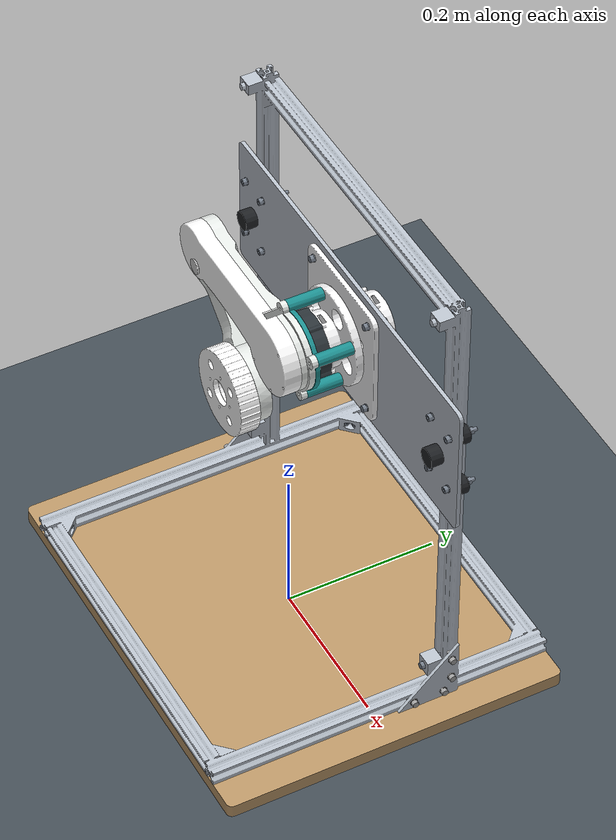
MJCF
<?xml version='1.0' encoding='utf-8'?>
<mujoco model="Leg test platform supported demo">
  <compiler angle="radian" meshdir="meshes" autolimits="true" inertiafromgeom="false" />
  <option timestep="0.001" gravity="0 0 -9.81" integrator="implicitfast" iterations="100" tolerance="1e-10" />
  <visual>
    <global offwidth="1280" offheight="960" />
    <headlight ambient=".4 .4 .4" diffuse=".6 .6 .6" />
  </visual>
  <statistic center="0 0 .33" extent=".9" />
  <default>
    <joint axis="0 1 0" damping=".06" armature=".001" />
    <geom mass="0" friction=".8 .005 .0001" solref=".008 1" />
    <default class="visual">
      <geom type="mesh" contype="0" conaffinity="0" group="1" />
    </default>
    <default class="collision">
      <geom group="3" rgba=".1 .7 .8 .3" />
    </default>
  </default>
  <asset>
    <texture name="ground_checker" type="2d" builtin="checker" rgb1="0.22 0.26 0.29" rgb2="0.3 0.34 0.37" width="512" height="512" />
    <material name="ground_material" texture="ground_checker" texuniform="true" texrepeat="5 5" reflectance="0" specular="0.1" shininess="0.1" />
    <mesh name="carriage_00" file="carriage_00.obj" inertia="shell" />
    <mesh name="frame_01" file="frame_01.obj" inertia="shell" />
    <mesh name="carriage_02" file="carriage_02.obj" inertia="shell" />
    <mesh name="carriage_03" file="carriage_03.obj" inertia="shell" />
    <mesh name="frame_04" file="frame_04.obj" inertia="shell" />
    <mesh name="frame_05" file="frame_05.obj" inertia="shell" />
    <mesh name="frame_06" file="frame_06.obj" inertia="shell" />
    <mesh name="carriage_07" file="carriage_07.obj" inertia="shell" />
    <mesh name="carriage_08" file="carriage_08.obj" inertia="shell" />
    <mesh name="thigh_09" file="thigh_09.obj" inertia="shell" />
    <mesh name="thigh_10" file="thigh_10.obj" inertia="shell" />
    <mesh name="thigh_11" file="thigh_11.obj" inertia="shell" />
    <mesh name="thigh_12" file="thigh_12.obj" inertia="shell" />
    <mesh name="thigh_13" file="thigh_13.obj" inertia="shell" />
    <mesh name="thigh_14" file="thigh_14.obj" inertia="shell" />
    <mesh name="horn_15" file="horn_15.obj" inertia="shell" />
    <mesh name="horn_16" file="horn_16.obj" inertia="shell" />
    <mesh name="horn_17" file="horn_17.obj" inertia="shell" />
    <mesh name="shin_18" file="shin_18.obj" inertia="shell" />
    <mesh name="shin_19" file="shin_19.obj" inertia="shell" />
    <mesh name="wheel_20" file="wheel_20.obj" inertia="shell" />
    <mesh name="shin_21" file="shin_21.obj" inertia="shell" />
    <mesh name="wheel_22" file="wheel_22.obj" inertia="shell" />
    <mesh name="rod_23" file="rod_23.obj" inertia="shell" />
  </asset>
  <worldbody>
    <light pos="0 -1 2" dir="0 .3 -1" directional="true" />
    <geom name="floor" type="plane" pos="0 0 0" size="0 0 .05" material="ground_material" contype="1" conaffinity="1" condim="4" priority="1" friction="0.8 0.005 0.0001" solref="0.008 1" solimp="0.9 0.95 0.001" margin="0" />
    <body name="frame">
      <inertial mass="4.787459983300101" pos="2.450453271e-15 0.01797716796 0.08615934274" fullinertia="0.232390092 0.296697384 0.2312576681 -5.382643658e-15 -7.78923875e-15 -0.0247548434" />
      <geom name="frame_01" mesh="frame_01" rgba="0.7215686275 0.7529411765 0.7921568627 1" class="visual" />
      <geom name="frame_04" mesh="frame_04" rgba="0.4666666667 0.5019607843 0.5490196078 1" class="visual" />
      <geom name="frame_05" mesh="frame_05" rgba="0.7254901961 0.5843137255 0.4 1" class="visual" />
      <geom name="frame_06" mesh="frame_06" rgba="0.6274509804 0.6274509804 0.6274509804 1" class="visual" />
      <geom name="collision_part_03_00" type="box" pos="-0.225 0.0905 0.338" size="0.01 0.01 0.3" class="collision" />
      <geom name="collision_part_04_00" type="box" pos="-0.225 0 0.028" size="0.01 0.225 0.01" class="collision" />
      <geom name="collision_part_05_00" type="box" pos="0.225 0.0905 0.338" size="0.01 0.01 0.3" class="collision" />
      <geom name="collision_part_06_00" type="box" pos="0.225 0 0.028" size="0.01 0.225 0.01" class="collision" />
      <geom name="collision_part_07_00" type="box" pos="0 -0.215 0.028" size="0.213 0.01 0.01" class="collision" />
      <geom name="collision_part_08_00" type="box" pos="0 0.215 0.028" size="0.213 0.01 0.01" class="collision" />
      <geom name="collision_part_09_00" type="box" pos="0 0.0905 0.625" size="0.213 0.01 0.01" class="collision" />
      <geom name="collision_part_31_00" type="box" pos="0 0 0.009" size="0.275 0.225 0.009" class="collision" />
    </body>
    <body name="carriage" pos="6.271301637e-18 0 0.4198767521">
      <joint name="carriage_z" type="slide" axis="0 0 1" ref="0.2504586106914035" range="0 0.3615818585" damping="2" armature="0" />
      <body name="thigh" pos="0 0 0">
        <joint name="hip" type="hinge" ref="0.0" range="0 1.570796327" />
        <body name="horn" pos="0 0 0">
          <joint name="knee" type="hinge" ref="-1.7549241206893385e-06" range="0 0.7853981634" />
          <body name="rod" pos="-0.02298136714 0 0.01928358796">
            <joint name="rod_pivot" type="hinge" ref="1.7549241206893385e-06" />
            <inertial mass="0.00766008134884538" pos="-0.09 -0.01333198703 9.929834732e-13" fullinertia="1.309105293e-07 2.590403896e-05 2.582873308e-05 0 0 0" />
            <geom name="rod_23" mesh="rod_23" rgba="0.9607843137 0.9607843137 0.9647058824 1" class="visual" />
            <site name="rod_end" pos="-0.18 0 1.98563388e-12" size=".002" group="4" />
          </body>
          <inertial mass="0.07735573925427747" pos="-0.0006461054649 0.006293377762 0.000604072785" fullinertia="1.273046748e-05 2.187784869e-05 1.287057546e-05 -9.138589271e-07 8.559610914e-07 8.442839517e-07" />
          <geom name="horn_15" mesh="horn_15" rgba="0.1098039216 0.5607843137 0.5647058824 1" class="visual" />
          <geom name="horn_16" mesh="horn_16" rgba="0.9607843137 0.9607843137 0.9647058824 1" class="visual" />
          <geom name="horn_17" mesh="horn_17" rgba="0.7960784314 0.7960784314 0.7960784314 1" class="visual" />
        </body>
        <body name="shin" pos="-0.18 0 1.985467346e-12">
          <joint name="shin_pivot" type="hinge" ref="-1.7549241206893385e-06" />
          <body name="wheel" pos="0.1149068357 -0.0448 -0.0964179398">
            <joint name="wheel" type="hinge" ref="0" />
            <inertial mass="0.3050781765648425" pos="1.029631769e-06 0.0001245329084 -1.609775199e-06" fullinertia="0.0002272415674 0.000398873505 0.0002272418579 5.498559037e-11 -8.564704936e-09 -1.278486558e-10" />
            <geom name="wheel_20" mesh="wheel_20" rgba="1 1 1 1" class="visual" />
            <geom name="wheel_22" mesh="wheel_22" rgba="0.9607843137 0.9607843137 0.9647058824 1" class="visual" />
            <site name="wheel_axis" size=".002" group="4" />
            <geom name="tyre_collision" type="cylinder" size="0.05500009652 0.013" quat=".7071067812 .7071067812 0 0" condim="4" class="collision" />
          </body>
          <inertial mass="0.41795362124123914" pos="0.1000727068 -0.02917504501 -0.08397026991" fullinertia="0.0007027696739 0.001469267703 0.0008822488936 9.830534222e-05 0.0005089280913 -8.248939337e-05" />
          <geom name="shin_18" mesh="shin_18" rgba="0.8980392157 0.9137254902 0.9019607843 1" class="visual" />
          <geom name="shin_19" mesh="shin_19" rgba="0.7960784314 0.7960784314 0.7960784314 1" class="visual" />
          <geom name="shin_21" mesh="shin_21" rgba="0.9607843137 0.9607843137 0.9647058824 1" class="visual" />
          <site name="shin_end" pos="-0.02298136714 0 0.01928358796" size=".002" group="4" />
          <geom name="shin_collision" type="capsule" fromto="0.01723602535 -0.004 -0.01446269097 0.09767081033 -0.004 -0.08195524883" size=".012" class="collision" />
        </body>
        <inertial mass="1.0856475386649562" pos="-0.009709532886 0.03372970465 0.001056361934" fullinertia="0.001589102372 0.003043423394 0.003134944989 -0.0004324236918 0.000187716601 4.598260843e-05" />
        <geom name="thigh_09" mesh="thigh_09" rgba="0.8980392157 0.9137254902 0.9019607843 1" class="visual" />
        <geom name="thigh_10" mesh="thigh_10" rgba="0.168627451 0.2 0.2196078431 1" class="visual" />
        <geom name="thigh_11" mesh="thigh_11" rgba="0.9607843137 0.9607843137 0.9647058824 1" class="visual" />
        <geom name="thigh_12" mesh="thigh_12" rgba="0.7960784314 0.7960784314 0.7960784314 1" class="visual" />
        <geom name="thigh_13" mesh="thigh_13" rgba="1 1 1 1" class="visual" />
        <geom name="thigh_14" mesh="thigh_14" rgba="0.1098039216 0.5607843137 0.5647058824 1" class="visual" />
        <geom name="thigh_collision" type="capsule" fromto="-0.027 -0.004 2.978173264e-13 -0.153 -0.004 1.68765002e-12" size=".012" class="collision" />
      </body>
      <inertial mass="2.320550847258263" pos="5.43146468e-05 0.08097173336 3.825550149e-05" fullinertia="0.005381391031 0.04947251385 0.04490063797 -4.072795037e-06 -1.723648837e-06 -7.552790818e-07" />
      <geom name="carriage_00" mesh="carriage_00" rgba="0.7215686275 0.7529411765 0.7921568627 1" class="visual" />
      <geom name="carriage_02" mesh="carriage_02" rgba="0.1176470588 0.1254901961 0.137254902 1" class="visual" />
      <geom name="carriage_03" mesh="carriage_03" rgba="0.4666666667 0.5019607843 0.5490196078 1" class="visual" />
      <geom name="carriage_07" mesh="carriage_07" rgba="0.168627451 0.2 0.2196078431 1" class="visual" />
      <geom name="carriage_08" mesh="carriage_08" rgba="0.9607843137 0.9607843137 0.9647058824 1" class="visual" />
      <site name="carriage_imu" size=".002" group="4" />
      <geom name="collision_part_02_00" type="box" pos="2.148427398e-17 0.0755 1.665334537e-16" size="0.265 0.0025 0.09" class="collision" />
    </body>
  </worldbody>
  <equality>
    <connect name="parallel_loop" site1="rod_end" site2="shin_end" solref=".003 1" solimp=".999 .9999 .0001" />
    <joint name="carriage_lock" joint1="carriage_z" polycoef="0 0 0 0 0" />
  </equality>
  <contact>
    <exclude body1="frame" body2="carriage" />
    <exclude body1="carriage" body2="horn" />
  </contact>
  <actuator>
    <position name="hip_servo" joint="hip" kp="160" kv="8" ctrlrange="0 1.570796327" forcerange="-11 11" />
    <position name="knee_servo" joint="knee" kp="160" kv="8" ctrlrange="0 0.7853981634" forcerange="-11 11" />
    <motor name="wheel_motor" joint="wheel" gear="1" ctrlrange="-2 2" forcerange="-2 2" />
  </actuator>
  <sensor>
    <jointpos name="hip_position" joint="hip" />
    <jointvel name="hip_velocity" joint="hip" />
    <jointpos name="knee_position" joint="knee" />
    <jointvel name="knee_velocity" joint="knee" />
    <jointpos name="wheel_position" joint="wheel" />
    <jointvel name="wheel_velocity" joint="wheel" />
    <jointpos name="carriage_z_position" joint="carriage_z" />
    <jointvel name="carriage_z_velocity" joint="carriage_z" />
    <accelerometer name="carriage_accel" site="carriage_imu" />
    <gyro name="carriage_gyro" site="carriage_imu" />
  </sensor>
</mujoco>
